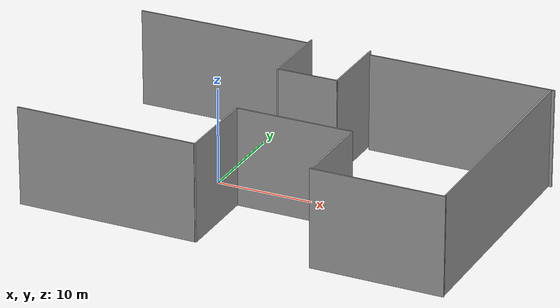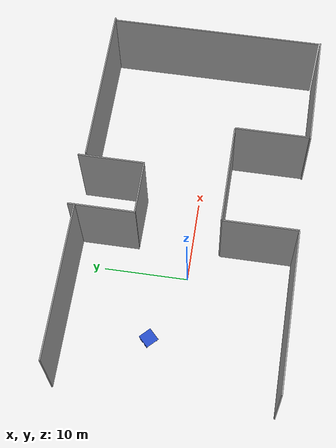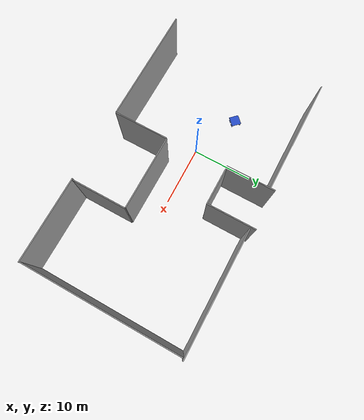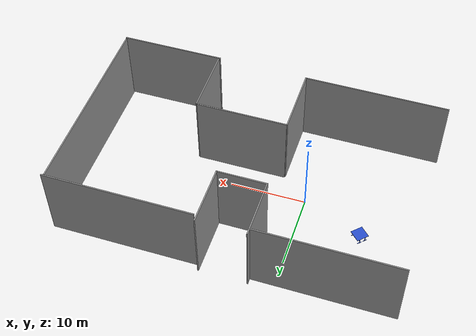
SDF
<sdf version="1.6">
 <world name="default">
  <model name="Wall_clone">
   <link name="link_0">
    <inertial>
     <mass>0.467221</mass>
     <inertia>
      <ixx>0.0398434</ixx>
      <ixy>0</ixy>
      <ixz>0</ixz>
      <iyy>0.391224</iyy>
      <iyz>0</iyz>
      <izz>0.353198</izz>
     </inertia>
    </inertial>
    <visual name="visual">
     <geometry><box><size>25.2956 0.152736 10.2725</size></box></geometry>
     <material>
      <lighting>1</lighting>
      <script><uri>file://media/materials/scripts/gazebo.material</uri><name>Gazebo/Grey</name></script>
     </material>
    </visual>
    <collision name="collision">
     <geometry><box><size>25.2956 0.152736 10.2725</size></box></geometry>
     <surface>
      <friction>
       <ode><mu>1</mu><mu2>1</mu2><fdir1>0 0 0</fdir1><slip1>0</slip1><slip2>0</slip2></ode>
       <torsional>
        <coefficient>1</coefficient>
        <patch_radius>0</patch_radius>
        <surface_radius>0</surface_radius>
        <use_patch_radius>1</use_patch_radius>
        <ode><slip>0</slip></ode>
       </torsional>
      </friction>
      <bounce><restitution_coefficient>0</restitution_coefficient><threshold>1e+06</threshold></bounce>
      <contact>
       <collide_without_contact>0</collide_without_contact>
       <collide_without_contact_bitmask>1</collide_without_contact_bitmask>
       <collide_bitmask>1</collide_bitmask>
       <ode>
        <soft_cfm>0</soft_cfm>
        <soft_erp>0.2</soft_erp>
        <kp>1e+13</kp>
        <kd>1</kd>
        <max_vel>0.01</max_vel>
        <min_depth>0</min_depth>
       </ode>
       <bullet>
        <split_impulse>1</split_impulse>
        <split_impulse_penetration_threshold>-0.01</split_impulse_penetration_threshold>
        <soft_cfm>0</soft_cfm>
        <soft_erp>0.2</soft_erp>
        <kp>1e+13</kp>
        <kd>1</kd>
       </bullet>
      </contact>
     </surface>
    </collision>
   </link>
   <static>1</static>
   <pose>29.0942 0.582122 5.05164 0 0 -1.5708</pose>
  </model>
  <model name="Wall_clone_clone_0">
   <link name="link_0">
    <inertial>
     <mass>0.467221</mass>
     <inertia>
      <ixx>0.0398434</ixx>
      <ixy>0</ixy>
      <ixz>0</ixz>
      <iyy>0.391224</iyy>
      <iyz>0</iyz>
      <izz>0.353198</izz>
     </inertia>
    </inertial>
    <visual name="visual">
     <geometry><box><size>18.4483 0.152736 10.2725</size></box></geometry>
     <material>
      <lighting>1</lighting>
      <script><uri>file://media/materials/scripts/gazebo.material</uri><name>Gazebo/Grey</name></script>
     </material>
    </visual>
    <collision name="collision">
     <geometry><box><size>18.4483 0.152736 10.2725</size></box></geometry>
     <surface>
      <friction>
       <ode><mu>1</mu><mu2>1</mu2><fdir1>0 0 0</fdir1><slip1>0</slip1><slip2>0</slip2></ode>
       <torsional>
        <coefficient>1</coefficient>
        <patch_radius>0</patch_radius>
        <surface_radius>0</surface_radius>
        <use_patch_radius>1</use_patch_radius>
        <ode><slip>0</slip></ode>
       </torsional>
      </friction>
      <bounce><restitution_coefficient>0</restitution_coefficient><threshold>1e+06</threshold></bounce>
      <contact>
       <collide_without_contact>0</collide_without_contact>
       <collide_without_contact_bitmask>1</collide_without_contact_bitmask>
       <collide_bitmask>1</collide_bitmask>
       <ode>
        <soft_cfm>0</soft_cfm>
        <soft_erp>0.2</soft_erp>
        <kp>1e+13</kp>
        <kd>1</kd>
        <max_vel>0.01</max_vel>
        <min_depth>0</min_depth>
       </ode>
       <bullet>
        <split_impulse>1</split_impulse>
        <split_impulse_penetration_threshold>-0.01</split_impulse_penetration_threshold>
        <soft_cfm>0</soft_cfm>
        <soft_erp>0.2</soft_erp>
        <kp>1e+13</kp>
        <kd>1</kd>
       </bullet>
      </contact>
     </surface>
    </collision>
   </link>
   <static>1</static>
   <pose>-5.94286 13.3498 5.05164 0 0 -4e-06</pose>
  </model>
  <model name="Wall_clone_clone_0_clone">
   <link name="link_0">
    <inertial>
     <mass>0.467221</mass>
     <inertia>
      <ixx>0.0398434</ixx>
      <ixy>0</ixy>
      <ixz>0</ixz>
      <iyy>0.391224</iyy>
      <iyz>0</iyz>
      <izz>0.353198</izz>
     </inertia>
    </inertial>
    <visual name="visual">
     <geometry><box><size>18.7996 0.152736 10.2725</size></box></geometry>
     <material>
      <lighting>1</lighting>
      <script><uri>file://media/materials/scripts/gazebo.material</uri><name>Gazebo/Grey</name></script>
     </material>
    </visual>
    <collision name="collision">
     <geometry><box><size>18.7996 0.152736 10.2725</size></box></geometry>
     <surface>
      <friction>
       <ode><mu>1</mu><mu2>1</mu2><fdir1>0 0 0</fdir1><slip1>0</slip1><slip2>0</slip2></ode>
       <torsional>
        <coefficient>1</coefficient>
        <patch_radius>0</patch_radius>
        <surface_radius>0</surface_radius>
        <use_patch_radius>1</use_patch_radius>
        <ode><slip>0</slip></ode>
       </torsional>
      </friction>
      <bounce><restitution_coefficient>0</restitution_coefficient><threshold>1e+06</threshold></bounce>
      <contact>
       <collide_without_contact>0</collide_without_contact>
       <collide_without_contact_bitmask>1</collide_without_contact_bitmask>
       <collide_bitmask>1</collide_bitmask>
       <ode>
        <soft_cfm>0</soft_cfm>
        <soft_erp>0.2</soft_erp>
        <kp>1e+13</kp>
        <kd>1</kd>
        <max_vel>0.01</max_vel>
        <min_depth>0</min_depth>
       </ode>
       <bullet>
        <split_impulse>1</split_impulse>
        <split_impulse_penetration_threshold>-0.01</split_impulse_penetration_threshold>
        <soft_cfm>0</soft_cfm>
        <soft_erp>0.2</soft_erp>
        <kp>1e+13</kp>
        <kd>1</kd>
       </bullet>
      </contact>
     </surface>
    </collision>
   </link>
   <static>1</static>
   <pose>-5.7854 -12.1547 5.05164 0 0 -4e-06</pose>
  </model>
  <model name="Wall_clone_clone_0_clone_clone">
   <link name="link_0">
    <inertial>
     <mass>0.467221</mass>
     <inertia>
      <ixx>0.0398434</ixx>
      <ixy>0</ixy>
      <ixz>0</ixz>
      <iyy>0.391224</iyy>
      <iyz>0</iyz>
      <izz>0.353198</izz>
     </inertia>
    </inertial>
    <visual name="visual">
     <geometry><box><size>8.74287 0.152736 10.2725</size></box></geometry>
     <material>
      <lighting>1</lighting>
      <script><uri>file://media/materials/scripts/gazebo.material</uri><name>Gazebo/Grey</name></script>
     </material>
    </visual>
    <collision name="collision">
     <geometry><box><size>8.74287 0.152736 10.2725</size></box></geometry>
     <surface>
      <friction>
       <ode><mu>1</mu><mu2>1</mu2><fdir1>0 0 0</fdir1><slip1>0</slip1><slip2>0</slip2></ode>
       <torsional>
        <coefficient>1</coefficient>
        <patch_radius>0</patch_radius>
        <surface_radius>0</surface_radius>
        <use_patch_radius>1</use_patch_radius>
        <ode><slip>0</slip></ode>
       </torsional>
      </friction>
      <bounce><restitution_coefficient>0</restitution_coefficient><threshold>1e+06</threshold></bounce>
      <contact>
       <collide_without_contact>0</collide_without_contact>
       <collide_without_contact_bitmask>1</collide_without_contact_bitmask>
       <collide_bitmask>1</collide_bitmask>
       <ode>
        <soft_cfm>0</soft_cfm>
        <soft_erp>0.2</soft_erp>
        <kp>1e+13</kp>
        <kd>1</kd>
        <max_vel>0.01</max_vel>
        <min_depth>0</min_depth>
       </ode>
       <bullet>
        <split_impulse>1</split_impulse>
        <split_impulse_penetration_threshold>-0.01</split_impulse_penetration_threshold>
        <soft_cfm>0</soft_cfm>
        <soft_erp>0.2</soft_erp>
        <kp>1e+13</kp>
        <kd>1</kd>
       </bullet>
      </contact>
     </surface>
    </collision>
   </link>
   <static>1</static>
   <pose>3.70345 -7.81343 5.05164 0 0 -1.5708</pose>
  </model>
  <model name="Wall_clone_clone_0_clone_clone_clone">
   <link name="link_0">
    <inertial>
     <mass>0.467221</mass>
     <inertia>
      <ixx>0.0398434</ixx>
      <ixy>0</ixy>
      <ixz>0</ixz>
      <iyy>0.391224</iyy>
      <iyz>0</iyz>
      <izz>0.353198</izz>
     </inertia>
    </inertial>
    <visual name="visual">
     <geometry><box><size>8.74287 0.152736 10.2725</size></box></geometry>
     <material>
      <lighting>1</lighting>
      <script><uri>file://media/materials/scripts/gazebo.material</uri><name>Gazebo/Grey</name></script>
     </material>
    </visual>
    <collision name="collision">
     <geometry><box><size>8.74287 0.152736 10.2725</size></box></geometry>
     <surface>
      <friction>
       <ode><mu>1</mu><mu2>1</mu2><fdir1>0 0 0</fdir1><slip1>0</slip1><slip2>0</slip2></ode>
       <torsional>
        <coefficient>1</coefficient>
        <patch_radius>0</patch_radius>
        <surface_radius>0</surface_radius>
        <use_patch_radius>1</use_patch_radius>
        <ode><slip>0</slip></ode>
       </torsional>
      </friction>
      <bounce><restitution_coefficient>0</restitution_coefficient><threshold>1e+06</threshold></bounce>
      <contact>
       <collide_without_contact>0</collide_without_contact>
       <collide_without_contact_bitmask>1</collide_without_contact_bitmask>
       <collide_bitmask>1</collide_bitmask>
       <ode>
        <soft_cfm>0</soft_cfm>
        <soft_erp>0.2</soft_erp>
        <kp>1e+13</kp>
        <kd>1</kd>
        <max_vel>0.01</max_vel>
        <min_depth>0</min_depth>
       </ode>
       <bullet>
        <split_impulse>1</split_impulse>
        <split_impulse_penetration_threshold>-0.01</split_impulse_penetration_threshold>
        <soft_cfm>0</soft_cfm>
        <soft_erp>0.2</soft_erp>
        <kp>1e+13</kp>
        <kd>1</kd>
       </bullet>
      </contact>
     </surface>
    </collision>
   </link>
   <static>1</static>
   <pose>15.7837 -7.77575 5.05164 0 0 -1.5708</pose>
  </model>
  <model name="Wall_clone_clone_0_clone_clone_clone_0">
   <link name="link_0">
    <inertial>
     <mass>0.467221</mass>
     <inertia>
      <ixx>0.0398434</ixx>
      <ixy>0</ixy>
      <ixz>0</ixz>
      <iyy>0.391224</iyy>
      <iyz>0</iyz>
      <izz>0.353198</izz>
     </inertia>
    </inertial>
    <visual name="visual">
     <geometry><box><size>11.9407 0.152736 10.2725</size></box></geometry>
     <material>
      <lighting>1</lighting>
      <script><uri>file://media/materials/scripts/gazebo.material</uri><name>Gazebo/Grey</name></script>
     </material>
    </visual>
    <collision name="collision">
     <geometry><box><size>11.9407 0.152736 10.2725</size></box></geometry>
     <surface>
      <friction>
       <ode><mu>1</mu><mu2>1</mu2><fdir1>0 0 0</fdir1><slip1>0</slip1><slip2>0</slip2></ode>
       <torsional>
        <coefficient>1</coefficient>
        <patch_radius>0</patch_radius>
        <surface_radius>0</surface_radius>
        <use_patch_radius>1</use_patch_radius>
        <ode><slip>0</slip></ode>
       </torsional>
      </friction>
      <bounce><restitution_coefficient>0</restitution_coefficient><threshold>1e+06</threshold></bounce>
      <contact>
       <collide_without_contact>0</collide_without_contact>
       <collide_without_contact_bitmask>1</collide_without_contact_bitmask>
       <collide_bitmask>1</collide_bitmask>
       <ode>
        <soft_cfm>0</soft_cfm>
        <soft_erp>0.2</soft_erp>
        <kp>1e+13</kp>
        <kd>1</kd>
        <max_vel>0.01</max_vel>
        <min_depth>0</min_depth>
       </ode>
       <bullet>
        <split_impulse>1</split_impulse>
        <split_impulse_penetration_threshold>-0.01</split_impulse_penetration_threshold>
        <soft_cfm>0</soft_cfm>
        <soft_erp>0.2</soft_erp>
        <kp>1e+13</kp>
        <kd>1</kd>
       </bullet>
      </contact>
     </surface>
    </collision>
   </link>
   <static>1</static>
   <pose>9.72292 -3.37629 5.05164 0 -0 3.14159</pose>
  </model>
  <model name="Wall_clone_clone_0_clone_clone_clone_0_clone">
   <link name="link_0">
    <inertial>
     <mass>0.467221</mass>
     <inertia>
      <ixx>0.0398434</ixx>
      <ixy>0</ixy>
      <ixz>0</ixz>
      <iyy>0.391224</iyy>
      <iyz>0</iyz>
      <izz>0.353198</izz>
     </inertia>
    </inertial>
    <visual name="visual">
     <geometry><box><size>13.6235 0.152736 10.2725</size></box></geometry>
     <material>
      <lighting>1</lighting>
      <script><uri>file://media/materials/scripts/gazebo.material</uri><name>Gazebo/Grey</name></script>
     </material>
    </visual>
    <collision name="collision">
     <geometry><box><size>13.6235 0.152736 10.2725</size></box></geometry>
     <surface>
      <friction>
       <ode><mu>1</mu><mu2>1</mu2><fdir1>0 0 0</fdir1><slip1>0</slip1><slip2>0</slip2></ode>
       <torsional>
        <coefficient>1</coefficient>
        <patch_radius>0</patch_radius>
        <surface_radius>0</surface_radius>
        <use_patch_radius>1</use_patch_radius>
        <ode><slip>0</slip></ode>
       </torsional>
      </friction>
      <bounce><restitution_coefficient>0</restitution_coefficient><threshold>1e+06</threshold></bounce>
      <contact>
       <collide_without_contact>0</collide_without_contact>
       <collide_without_contact_bitmask>1</collide_without_contact_bitmask>
       <collide_bitmask>1</collide_bitmask>
       <ode>
        <soft_cfm>0</soft_cfm>
        <soft_erp>0.2</soft_erp>
        <kp>1e+13</kp>
        <kd>1</kd>
        <max_vel>0.01</max_vel>
        <min_depth>0</min_depth>
       </ode>
       <bullet>
        <split_impulse>1</split_impulse>
        <split_impulse_penetration_threshold>-0.01</split_impulse_penetration_threshold>
        <soft_cfm>0</soft_cfm>
        <soft_erp>0.2</soft_erp>
        <kp>1e+13</kp>
        <kd>1</kd>
       </bullet>
      </contact>
     </surface>
    </collision>
   </link>
   <static>1</static>
   <pose>22.4064 -12.2837 5.05164 0 -0 3.14159</pose>
  </model>
  <model name="Wall_clone_clone_0_clone_clone_clone_0_clone_clone">
   <link name="link_0">
    <inertial>
     <mass>0.467221</mass>
     <inertia>
      <ixx>0.0398434</ixx>
      <ixy>0</ixy>
      <ixz>0</ixz>
      <iyy>0.391224</iyy>
      <iyz>0</iyz>
      <izz>0.353198</izz>
     </inertia>
    </inertial>
    <visual name="visual">
     <geometry><box><size>19.4955 0.152736 10.2725</size></box></geometry>
     <material>
      <lighting>1</lighting>
      <script><uri>file://media/materials/scripts/gazebo.material</uri><name>Gazebo/Grey</name></script>
     </material>
    </visual>
    <collision name="collision">
     <geometry><box><size>19.4955 0.152736 10.2725</size></box></geometry>
     <surface>
      <friction>
       <ode><mu>1</mu><mu2>1</mu2><fdir1>0 0 0</fdir1><slip1>0</slip1><slip2>0</slip2></ode>
       <torsional>
        <coefficient>1</coefficient>
        <patch_radius>0</patch_radius>
        <surface_radius>0</surface_radius>
        <use_patch_radius>1</use_patch_radius>
        <ode><slip>0</slip></ode>
       </torsional>
      </friction>
      <bounce><restitution_coefficient>0</restitution_coefficient><threshold>1e+06</threshold></bounce>
      <contact>
       <collide_without_contact>0</collide_without_contact>
       <collide_without_contact_bitmask>1</collide_without_contact_bitmask>
       <collide_bitmask>1</collide_bitmask>
       <ode>
        <soft_cfm>0</soft_cfm>
        <soft_erp>0.2</soft_erp>
        <kp>1e+13</kp>
        <kd>1</kd>
        <max_vel>0.01</max_vel>
        <min_depth>0</min_depth>
       </ode>
       <bullet>
        <split_impulse>1</split_impulse>
        <split_impulse_penetration_threshold>-0.01</split_impulse_penetration_threshold>
        <soft_cfm>0</soft_cfm>
        <soft_erp>0.2</soft_erp>
        <kp>1e+13</kp>
        <kd>1</kd>
       </bullet>
      </contact>
     </surface>
    </collision>
   </link>
   <static>1</static>
   <pose>19.728 13.3426 5.05164 0 -0 3.14159</pose>
  </model>
  <model name="Wall_clone_clone_0_clone_clone_clone_1">
   <link name="link_0">
    <inertial>
     <mass>0.467221</mass>
     <inertia>
      <ixx>0.0398434</ixx>
      <ixy>0</ixy>
      <ixz>0</ixz>
      <iyy>0.391224</iyy>
      <iyz>0</iyz>
      <izz>0.353198</izz>
     </inertia>
    </inertial>
    <visual name="visual">
     <geometry><box><size>7.81661 0.152736 10.2725</size></box></geometry>
     <material>
      <lighting>1</lighting>
      <script><uri>file://media/materials/scripts/gazebo.material</uri><name>Gazebo/Grey</name></script>
     </material>
    </visual>
    <collision name="collision">
     <geometry><box><size>7.81661 0.152736 10.2725</size></box></geometry>
     <surface>
      <friction>
       <ode><mu>1</mu><mu2>1</mu2><fdir1>0 0 0</fdir1><slip1>0</slip1><slip2>0</slip2></ode>
       <torsional>
        <coefficient>1</coefficient>
        <patch_radius>0</patch_radius>
        <surface_radius>0</surface_radius>
        <use_patch_radius>1</use_patch_radius>
        <ode><slip>0</slip></ode>
       </torsional>
      </friction>
      <bounce><restitution_coefficient>0</restitution_coefficient><threshold>1e+06</threshold></bounce>
      <contact>
       <collide_without_contact>0</collide_without_contact>
       <collide_without_contact_bitmask>1</collide_without_contact_bitmask>
       <collide_bitmask>1</collide_bitmask>
       <ode>
        <soft_cfm>0</soft_cfm>
        <soft_erp>0.2</soft_erp>
        <kp>1e+13</kp>
        <kd>1</kd>
        <max_vel>0.01</max_vel>
        <min_depth>0</min_depth>
       </ode>
       <bullet>
        <split_impulse>1</split_impulse>
        <split_impulse_penetration_threshold>-0.01</split_impulse_penetration_threshold>
        <soft_cfm>0</soft_cfm>
        <soft_erp>0.2</soft_erp>
        <kp>1e+13</kp>
        <kd>1</kd>
       </bullet>
      </contact>
     </surface>
    </collision>
   </link>
   <static>1</static>
   <pose>3.2879 10.2519 5.05164 0 0 -1.5708</pose>
  </model>
  <model name="Wall_clone_clone_0_clone_clone_clone_1_clone">
   <link name="link_0">
    <inertial>
     <mass>0.467221</mass>
     <inertia>
      <ixx>0.0398434</ixx>
      <ixy>0</ixy>
      <ixz>0</ixz>
      <iyy>0.391224</iyy>
      <iyz>0</iyz>
      <izz>0.353198</izz>
     </inertia>
    </inertial>
    <visual name="visual">
     <geometry><box><size>6.31047 0.152736 10.2725</size></box></geometry>
     <material>
      <lighting>1</lighting>
      <script><uri>file://media/materials/scripts/gazebo.material</uri><name>Gazebo/Grey</name></script>
     </material>
    </visual>
    <collision name="collision">
     <geometry><box><size>6.31047 0.152736 10.2725</size></box></geometry>
     <surface>
      <friction>
       <ode><mu>1</mu><mu2>1</mu2><fdir1>0 0 0</fdir1><slip1>0</slip1><slip2>0</slip2></ode>
       <torsional>
        <coefficient>1</coefficient>
        <patch_radius>0</patch_radius>
        <surface_radius>0</surface_radius>
        <use_patch_radius>1</use_patch_radius>
        <ode><slip>0</slip></ode>
       </torsional>
      </friction>
      <bounce><restitution_coefficient>0</restitution_coefficient><threshold>1e+06</threshold></bounce>
      <contact>
       <collide_without_contact>0</collide_without_contact>
       <collide_without_contact_bitmask>1</collide_without_contact_bitmask>
       <collide_bitmask>1</collide_bitmask>
       <ode>
        <soft_cfm>0</soft_cfm>
        <soft_erp>0.2</soft_erp>
        <kp>1e+13</kp>
        <kd>1</kd>
        <max_vel>0.01</max_vel>
        <min_depth>0</min_depth>
       </ode>
       <bullet>
        <split_impulse>1</split_impulse>
        <split_impulse_penetration_threshold>-0.01</split_impulse_penetration_threshold>
        <soft_cfm>0</soft_cfm>
        <soft_erp>0.2</soft_erp>
        <kp>1e+13</kp>
        <kd>1</kd>
       </bullet>
      </contact>
     </surface>
    </collision>
   </link>
   <static>1</static>
   <pose>6.51204 6.43694 5.05164 0 -0 3.14159</pose>
  </model>
  <model name="Wall_clone_clone_0_clone_clone_clone_1_clone_0">
   <link name="link_0">
    <inertial>
     <mass>0.467221</mass>
     <inertia>
      <ixx>0.0398434</ixx>
      <ixy>0</ixy>
      <ixz>0</ixz>
      <iyy>0.391224</iyy>
      <iyz>0</iyz>
      <izz>0.353198</izz>
     </inertia>
    </inertial>
    <visual name="visual">
     <geometry><box><size>7.81662 0.152736 10.2725</size></box></geometry>
     <material>
      <lighting>1</lighting>
      <script><uri>file://media/materials/scripts/gazebo.material</uri><name>Gazebo/Grey</name></script>
     </material>
    </visual>
    <collision name="collision">
     <geometry><box><size>7.81662 0.152736 10.2725</size></box></geometry>
     <surface>
      <friction>
       <ode><mu>1</mu><mu2>1</mu2><fdir1>0 0 0</fdir1><slip1>0</slip1><slip2>0</slip2></ode>
       <torsional>
        <coefficient>1</coefficient>
        <patch_radius>0</patch_radius>
        <surface_radius>0</surface_radius>
        <use_patch_radius>1</use_patch_radius>
        <ode><slip>0</slip></ode>
       </torsional>
      </friction>
      <bounce><restitution_coefficient>0</restitution_coefficient><threshold>1e+06</threshold></bounce>
      <contact>
       <collide_without_contact>0</collide_without_contact>
       <collide_without_contact_bitmask>1</collide_without_contact_bitmask>
       <collide_bitmask>1</collide_bitmask>
       <ode>
        <soft_cfm>0</soft_cfm>
        <soft_erp>0.2</soft_erp>
        <kp>1e+13</kp>
        <kd>1</kd>
        <max_vel>0.01</max_vel>
        <min_depth>0</min_depth>
       </ode>
       <bullet>
        <split_impulse>1</split_impulse>
        <split_impulse_penetration_threshold>-0.01</split_impulse_penetration_threshold>
        <soft_cfm>0</soft_cfm>
        <soft_erp>0.2</soft_erp>
        <kp>1e+13</kp>
        <kd>1</kd>
       </bullet>
      </contact>
     </surface>
    </collision>
   </link>
   <static>1</static>
   <pose>9.64965 10.2933 5.05164 0 0 -1.5708</pose>
  </model>
  <model name="table_train_blue">
   <link name="link_1">
    <inertial>
     <mass>0.00101438</mass>
     <inertia>
      <ixx>5.68699e-07</ixx>
      <ixy>0</ixy>
      <ixz>0</ixz>
      <iyy>2.6602e-05</iyy>
      <iyz>0</iyz>
      <izz>2.70816e-05</izz>
     </inertia>
    </inertial>
    <pose>0.401616 0.715267 -0.253214 0 -0 0</pose>
    <visual name="visual">
     <geometry><box><size>0.560509 0.078742 0.022963</size></box></geometry>
     <material>
      <lighting>1</lighting>
      <script><uri>file://media/materials/scripts/gazebo.material</uri><name>Gazebo/Blue</name></script>
     </material>
    </visual>
    <collision name="collision">
     <geometry><box><size>0.560509 0.078742 0.022963</size></box></geometry>
     <surface>
      <friction>
       <ode><mu>1</mu><mu2>1</mu2><fdir1>0 0 0</fdir1><slip1>0</slip1><slip2>0</slip2></ode>
       <torsional>
        <coefficient>1</coefficient>
        <patch_radius>0</patch_radius>
        <surface_radius>0</surface_radius>
        <use_patch_radius>1</use_patch_radius>
        <ode><slip>0</slip></ode>
       </torsional>
      </friction>
      <bounce><restitution_coefficient>0</restitution_coefficient><threshold>1e+06</threshold></bounce>
      <contact>
       <collide_without_contact>0</collide_without_contact>
       <collide_without_contact_bitmask>1</collide_without_contact_bitmask>
       <collide_bitmask>1</collide_bitmask>
       <ode>
        <soft_cfm>0</soft_cfm>
        <soft_erp>0.2</soft_erp>
        <kp>1e+13</kp>
        <kd>1</kd>
        <max_vel>0.01</max_vel>
        <min_depth>0</min_depth>
       </ode>
       <bullet>
        <split_impulse>1</split_impulse>
        <split_impulse_penetration_threshold>-0.01</split_impulse_penetration_threshold>
        <soft_cfm>0</soft_cfm>
        <soft_erp>0.2</soft_erp>
        <kp>1e+13</kp>
        <kd>1</kd>
       </bullet>
      </contact>
     </surface>
    </collision>
   </link>
   <link name="link_1_clone">
    <inertial>
     <mass>0.00091121</mass>
     <inertia>
      <ixx>4.19417e-07</ixx>
      <ixy>0</ixy>
      <ixz>0</ixz>
      <iyy>2.38963e-05</iyy>
      <iyz>0</iyz>
      <izz>2.42357e-05</izz>
     </inertia>
    </inertial>
    <pose>-0.397753 0.712784 -0.253214 0 -0 0</pose>
    <visual name="visual">
     <geometry><box><size>0.560509 0.070683 0.022963</size></box></geometry>
     <material>
      <lighting>1</lighting>
      <script><uri>file://media/materials/scripts/gazebo.material</uri><name>Gazebo/Blue</name></script>
      <shader type="pixel"/>
     </material>
    </visual>
    <collision name="collision">
     <geometry><box><size>0.560509 0.070683 0.022963</size></box></geometry>
     <surface>
      <friction>
       <ode><mu>1</mu><mu2>1</mu2><fdir1>0 0 0</fdir1><slip1>0</slip1><slip2>0</slip2></ode>
       <torsional>
        <coefficient>1</coefficient>
        <patch_radius>0</patch_radius>
        <surface_radius>0</surface_radius>
        <use_patch_radius>1</use_patch_radius>
        <ode><slip>0</slip></ode>
       </torsional>
      </friction>
      <bounce><restitution_coefficient>0</restitution_coefficient><threshold>1e+06</threshold></bounce>
      <contact>
       <collide_without_contact>0</collide_without_contact>
       <collide_without_contact_bitmask>1</collide_without_contact_bitmask>
       <collide_bitmask>1</collide_bitmask>
       <ode>
        <soft_cfm>0</soft_cfm>
        <soft_erp>0.2</soft_erp>
        <kp>1e+13</kp>
        <kd>1</kd>
        <max_vel>0.01</max_vel>
        <min_depth>0</min_depth>
       </ode>
       <bullet>
        <split_impulse>1</split_impulse>
        <split_impulse_penetration_threshold>-0.01</split_impulse_penetration_threshold>
        <soft_cfm>0</soft_cfm>
        <soft_erp>0.2</soft_erp>
        <kp>1e+13</kp>
        <kd>1</kd>
       </bullet>
      </contact>
     </surface>
    </collision>
   </link>
   <link name="link_1_clone_0">
    <inertial>
     <mass>0.00101881</mass>
     <inertia>
      <ixx>5.74997e-07</ixx>
      <ixy>0</ixy>
      <ixz>0</ixz>
      <iyy>2.67181e-05</iyy>
      <iyz>0</iyz>
      <izz>2.72035e-05</izz>
     </inertia>
    </inertial>
    <pose>0.402245 -0.712752 -0.253214 0 -0 0</pose>
    <visual name="visual">
     <geometry><box><size>0.560509 0.079027 0.022963</size></box></geometry>
     <material>
      <lighting>1</lighting>
      <script><uri>file://media/materials/scripts/gazebo.material</uri><name>Gazebo/Blue</name></script>
      <shader type="pixel"/>
     </material>
    </visual>
    <collision name="collision">
     <geometry><box><size>0.560509 0.079027 0.022963</size></box></geometry>
     <surface>
      <friction>
       <ode><mu>1</mu><mu2>1</mu2><fdir1>0 0 0</fdir1><slip1>0</slip1><slip2>0</slip2></ode>
       <torsional>
        <coefficient>1</coefficient>
        <patch_radius>0</patch_radius>
        <surface_radius>0</surface_radius>
        <use_patch_radius>1</use_patch_radius>
        <ode><slip>0</slip></ode>
       </torsional>
      </friction>
      <bounce><restitution_coefficient>0</restitution_coefficient><threshold>1e+06</threshold></bounce>
      <contact>
       <collide_without_contact>0</collide_without_contact>
       <collide_without_contact_bitmask>1</collide_without_contact_bitmask>
       <collide_bitmask>1</collide_bitmask>
       <ode>
        <soft_cfm>0</soft_cfm>
        <soft_erp>0.2</soft_erp>
        <kp>1e+13</kp>
        <kd>1</kd>
        <max_vel>0.01</max_vel>
        <min_depth>0</min_depth>
       </ode>
       <bullet>
        <split_impulse>1</split_impulse>
        <split_impulse_penetration_threshold>-0.01</split_impulse_penetration_threshold>
        <soft_cfm>0</soft_cfm>
        <soft_erp>0.2</soft_erp>
        <kp>1e+13</kp>
        <kd>1</kd>
       </bullet>
      </contact>
     </surface>
    </collision>
   </link>
   <link name="link_1_clone_1">
    <inertial>
     <mass>0.00091121</mass>
     <inertia>
      <ixx>4.19417e-07</ixx>
      <ixy>0</ixy>
      <ixz>0</ixz>
      <iyy>2.38963e-05</iyy>
      <iyz>0</iyz>
      <izz>2.42357e-05</izz>
     </inertia>
    </inertial>
    <pose>-0.395448 -0.713621 -0.253214 0 -0 0</pose>
    <visual name="visual">
     <geometry><box><size>0.560509 0.070683 0.022963</size></box></geometry>
     <material>
      <lighting>1</lighting>
      <script><uri>file://media/materials/scripts/gazebo.material</uri><name>Gazebo/Blue</name></script>
      <shader type="pixel"/>
     </material>
    </visual>
    <collision name="collision">
     <geometry><box><size>0.560509 0.070683 0.022963</size></box></geometry>
     <surface>
      <friction>
       <ode><mu>1</mu><mu2>1</mu2><fdir1>0 0 0</fdir1><slip1>0</slip1><slip2>0</slip2></ode>
       <torsional>
        <coefficient>1</coefficient>
        <patch_radius>0</patch_radius>
        <surface_radius>0</surface_radius>
        <use_patch_radius>1</use_patch_radius>
        <ode><slip>0</slip></ode>
       </torsional>
      </friction>
      <bounce><restitution_coefficient>0</restitution_coefficient><threshold>1e+06</threshold></bounce>
      <contact>
       <collide_without_contact>0</collide_without_contact>
       <collide_without_contact_bitmask>1</collide_without_contact_bitmask>
       <collide_bitmask>1</collide_bitmask>
       <ode>
        <soft_cfm>0</soft_cfm>
        <soft_erp>0.2</soft_erp>
        <kp>1e+13</kp>
        <kd>1</kd>
        <max_vel>0.01</max_vel>
        <min_depth>0</min_depth>
       </ode>
       <bullet>
        <split_impulse>1</split_impulse>
        <split_impulse_penetration_threshold>-0.01</split_impulse_penetration_threshold>
        <soft_cfm>0</soft_cfm>
        <soft_erp>0.2</soft_erp>
        <kp>1e+13</kp>
        <kd>1</kd>
       </bullet>
      </contact>
     </surface>
    </collision>
   </link>
   <link name="link_1_clone_2">
    <inertial>
     <mass>0.00374954</mass>
     <inertia>
      <ixx>0.000173692</ixx>
      <ixy>0</ixy>
      <ixz>0</ixz>
      <iyy>0.000173716</iyy>
      <iyz>0</iyz>
      <izz>3.14587e-06</izz>
     </inertia>
    </inertial>
    <pose>0.400365 0.715374 0.127721 0 -0 0</pose>
    <visual name="visual">
     <geometry><box><size>0.071217 0.070683 0.742218</size></box></geometry>
     <material>
      <lighting>1</lighting>
      <script><uri>file://media/materials/scripts/gazebo.material</uri><name>Gazebo/Blue</name></script>
      <shader type="pixel"/>
     </material>
    </visual>
    <collision name="collision">
     <geometry><box><size>0.071217 0.070683 0.742218</size></box></geometry>
     <surface>
      <friction>
       <ode><mu>1</mu><mu2>1</mu2><fdir1>0 0 0</fdir1><slip1>0</slip1><slip2>0</slip2></ode>
       <torsional>
        <coefficient>1</coefficient>
        <patch_radius>0</patch_radius>
        <surface_radius>0</surface_radius>
        <use_patch_radius>1</use_patch_radius>
        <ode><slip>0</slip></ode>
       </torsional>
      </friction>
      <bounce><restitution_coefficient>0</restitution_coefficient><threshold>1e+06</threshold></bounce>
      <contact>
       <collide_without_contact>0</collide_without_contact>
       <collide_without_contact_bitmask>1</collide_without_contact_bitmask>
       <collide_bitmask>1</collide_bitmask>
       <ode>
        <soft_cfm>0</soft_cfm>
        <soft_erp>0.2</soft_erp>
        <kp>1e+13</kp>
        <kd>1</kd>
        <max_vel>0.01</max_vel>
        <min_depth>0</min_depth>
       </ode>
       <bullet>
        <split_impulse>1</split_impulse>
        <split_impulse_penetration_threshold>-0.01</split_impulse_penetration_threshold>
        <soft_cfm>0</soft_cfm>
        <soft_erp>0.2</soft_erp>
        <kp>1e+13</kp>
        <kd>1</kd>
       </bullet>
      </contact>
     </surface>
    </collision>
   </link>
   <link name="link_1_clone_2_clone">
    <inertial>
     <mass>0.00374954</mass>
     <inertia>
      <ixx>0.000173692</ixx>
      <ixy>0</ixy>
      <ixz>0</ixz>
      <iyy>0.000173716</iyy>
      <iyz>0</iyz>
      <izz>3.14587e-06</izz>
     </inertia>
    </inertial>
    <pose>0.400909 -0.713133 0.127721 0 -0 0</pose>
    <visual name="visual">
     <geometry><box><size>0.071217 0.070683 0.742218</size></box></geometry>
     <material>
      <lighting>1</lighting>
      <script><uri>file://media/materials/scripts/gazebo.material</uri><name>Gazebo/Blue</name></script>
      <shader type="pixel"/>
     </material>
    </visual>
    <collision name="collision">
     <geometry><box><size>0.071217 0.070683 0.742218</size></box></geometry>
     <surface>
      <friction>
       <ode><mu>1</mu><mu2>1</mu2><fdir1>0 0 0</fdir1><slip1>0</slip1><slip2>0</slip2></ode>
       <torsional>
        <coefficient>1</coefficient>
        <patch_radius>0</patch_radius>
        <surface_radius>0</surface_radius>
        <use_patch_radius>1</use_patch_radius>
        <ode><slip>0</slip></ode>
       </torsional>
      </friction>
      <bounce><restitution_coefficient>0</restitution_coefficient><threshold>1e+06</threshold></bounce>
      <contact>
       <collide_without_contact>0</collide_without_contact>
       <collide_without_contact_bitmask>1</collide_without_contact_bitmask>
       <collide_bitmask>1</collide_bitmask>
       <ode>
        <soft_cfm>0</soft_cfm>
        <soft_erp>0.2</soft_erp>
        <kp>1e+13</kp>
        <kd>1</kd>
        <max_vel>0.01</max_vel>
        <min_depth>0</min_depth>
       </ode>
       <bullet>
        <split_impulse>1</split_impulse>
        <split_impulse_penetration_threshold>-0.01</split_impulse_penetration_threshold>
        <soft_cfm>0</soft_cfm>
        <soft_erp>0.2</soft_erp>
        <kp>1e+13</kp>
        <kd>1</kd>
       </bullet>
      </contact>
     </surface>
    </collision>
   </link>
   <link name="link_1_clone_2_clone_0">
    <inertial>
     <mass>0.00374954</mass>
     <inertia>
      <ixx>0.000173692</ixx>
      <ixy>0</ixy>
      <ixz>0</ixz>
      <iyy>0.000173716</iyy>
      <iyz>0</iyz>
      <izz>3.14587e-06</izz>
     </inertia>
    </inertial>
    <pose>-0.397388 0.712627 0.127721 0 -0 0</pose>
    <visual name="visual">
     <geometry><box><size>0.071217 0.070683 0.742218</size></box></geometry>
     <material>
      <lighting>1</lighting>
      <script><uri>file://media/materials/scripts/gazebo.material</uri><name>Gazebo/Blue</name></script>
      <shader type="pixel"/>
     </material>
    </visual>
    <collision name="collision">
     <geometry><box><size>0.071217 0.070683 0.742218</size></box></geometry>
     <surface>
      <friction>
       <ode><mu>1</mu><mu2>1</mu2><fdir1>0 0 0</fdir1><slip1>0</slip1><slip2>0</slip2></ode>
       <torsional>
        <coefficient>1</coefficient>
        <patch_radius>0</patch_radius>
        <surface_radius>0</surface_radius>
        <use_patch_radius>1</use_patch_radius>
        <ode><slip>0</slip></ode>
       </torsional>
      </friction>
      <bounce><restitution_coefficient>0</restitution_coefficient><threshold>1e+06</threshold></bounce>
      <contact>
       <collide_without_contact>0</collide_without_contact>
       <collide_without_contact_bitmask>1</collide_without_contact_bitmask>
       <collide_bitmask>1</collide_bitmask>
       <ode>
        <soft_cfm>0</soft_cfm>
        <soft_erp>0.2</soft_erp>
        <kp>1e+13</kp>
        <kd>1</kd>
        <max_vel>0.01</max_vel>
        <min_depth>0</min_depth>
       </ode>
       <bullet>
        <split_impulse>1</split_impulse>
        <split_impulse_penetration_threshold>-0.01</split_impulse_penetration_threshold>
        <soft_cfm>0</soft_cfm>
        <soft_erp>0.2</soft_erp>
        <kp>1e+13</kp>
        <kd>1</kd>
       </bullet>
      </contact>
     </surface>
    </collision>
   </link>
   <link name="link_1_clone_2_clone_1">
    <inertial>
     <mass>0.00374954</mass>
     <inertia>
      <ixx>0.000173692</ixx>
      <ixy>0</ixy>
      <ixz>0</ixz>
      <iyy>0.000173716</iyy>
      <iyz>0</iyz>
      <izz>3.14587e-06</izz>
     </inertia>
    </inertial>
    <pose>-0.397853 -0.713469 0.127721 0 -0 0</pose>
    <visual name="visual">
     <geometry><box><size>0.071217 0.070683 0.742218</size></box></geometry>
     <material>
      <lighting>1</lighting>
      <script><uri>file://media/materials/scripts/gazebo.material</uri><name>Gazebo/Blue</name></script>
      <shader type="pixel"/>
     </material>
    </visual>
    <collision name="collision">
     <geometry><box><size>0.071217 0.070683 0.742218</size></box></geometry>
     <surface>
      <friction>
       <ode><mu>1</mu><mu2>1</mu2><fdir1>0 0 0</fdir1><slip1>0</slip1><slip2>0</slip2></ode>
       <torsional>
        <coefficient>1</coefficient>
        <patch_radius>0</patch_radius>
        <surface_radius>0</surface_radius>
        <use_patch_radius>1</use_patch_radius>
        <ode><slip>0</slip></ode>
       </torsional>
      </friction>
      <bounce><restitution_coefficient>0</restitution_coefficient><threshold>1e+06</threshold></bounce>
      <contact>
       <collide_without_contact>0</collide_without_contact>
       <collide_without_contact_bitmask>1</collide_without_contact_bitmask>
       <collide_bitmask>1</collide_bitmask>
       <ode>
        <soft_cfm>0</soft_cfm>
        <soft_erp>0.2</soft_erp>
        <kp>1e+13</kp>
        <kd>1</kd>
        <max_vel>0.01</max_vel>
        <min_depth>0</min_depth>
       </ode>
       <bullet>
        <split_impulse>1</split_impulse>
        <split_impulse_penetration_threshold>-0.01</split_impulse_penetration_threshold>
        <soft_cfm>0</soft_cfm>
        <soft_erp>0.2</soft_erp>
        <kp>1e+13</kp>
        <kd>1</kd>
       </bullet>
      </contact>
     </surface>
    </collision>
   </link>
   <link name="link_3">
    <inertial>
     <mass>0.128642</mass>
     <inertia>
      <ixx>0.0279879</ixx>
      <ixy>0</ixy>
      <ixz>0</ixz>
      <iyy>0.0287996</iyy>
      <iyz>0</iyz>
      <izz>0.0567363</izz>
     </inertia>
    </inertial>
    <pose>-0.01669 -0.003076 0.501974 0 -0 0</pose>
    <visual name="visual">
     <geometry><box><size>1.63832 1.61505 0.04888</size></box></geometry>
     <material>
      <lighting>1</lighting>
      <script><uri>file://media/materials/scripts/gazebo.material</uri><name>Gazebo/Blue</name></script>
     </material>
    </visual>
    <collision name="collision">
     <geometry><box><size>1.63832 1.61505 0.04888</size></box></geometry>
     <surface>
      <friction>
       <ode><mu>1</mu><mu2>1</mu2><fdir1>0 0 0</fdir1><slip1>0</slip1><slip2>0</slip2></ode>
       <torsional>
        <coefficient>1</coefficient>
        <patch_radius>0</patch_radius>
        <surface_radius>0</surface_radius>
        <use_patch_radius>1</use_patch_radius>
        <ode><slip>0</slip></ode>
       </torsional>
      </friction>
      <bounce><restitution_coefficient>0</restitution_coefficient><threshold>1e+06</threshold></bounce>
      <contact>
       <collide_without_contact>0</collide_without_contact>
       <collide_without_contact_bitmask>1</collide_without_contact_bitmask>
       <collide_bitmask>1</collide_bitmask>
       <ode>
        <soft_cfm>0</soft_cfm>
        <soft_erp>0.2</soft_erp>
        <kp>1e+13</kp>
        <kd>1</kd>
        <max_vel>0.01</max_vel>
        <min_depth>0</min_depth>
       </ode>
       <bullet>
        <split_impulse>1</split_impulse>
        <split_impulse_penetration_threshold>-0.01</split_impulse_penetration_threshold>
        <soft_cfm>0</soft_cfm>
        <soft_erp>0.2</soft_erp>
        <kp>1e+13</kp>
        <kd>1</kd>
       </bullet>
      </contact>
     </surface>
    </collision>
   </link>
   <static>1</static>
   <pose>-8.06767 3.33945 0.267841 0 -0 0.785398</pose>
  </model>
 </world>
</sdf>
